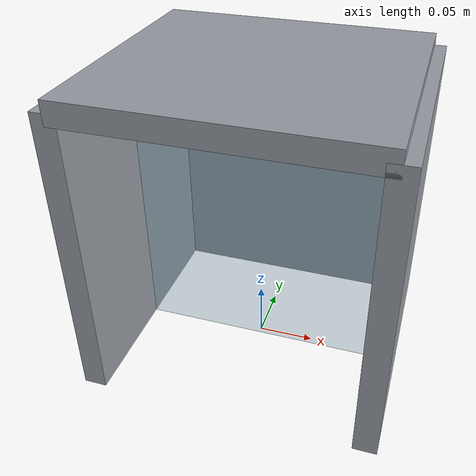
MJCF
<?xml version="1.0" encoding="utf-8"?>
<mujoco model="heat_treatment_oven">
  <compiler angle="radian" autolimits="true"/>
  <default>
    <default class="body"><geom contype="1" conaffinity="1"/></default>
  </default>
  <worldbody>
    <body name="base">
      <geom type="box" size="0.12 0.01 0.13" pos="0 0.11 0.13" rgba="0.6 0.62 0.65 1" class="body"/>
      <geom type="box" size="0.01 0.11 0.13" pos="-0.12 0 0.13" rgba="0.6 0.62 0.65 1" class="body"/>
      <geom type="box" size="0.01 0.11 0.13" pos="0.12 0 0.13" rgba="0.6 0.62 0.65 1" class="body"/>
      <geom type="box" size="0.12 0.11 0.01" pos="0 0 0.26" rgba="0.6 0.62 0.65 1" class="body"/>
      <body name="door" pos="-0.12 0.0 0.13">
        <joint name="door_joint" type="hinge" axis="0 0 1" range="0 1.8" damping="0.6" frictionloss="0.3"/>
  <geom type="box" size="0.12 0.005 0.13" pos="0.12 0 0" rgba="0.6 0.8 0.9 0.35" class="body"/>
      </body>
    </body>
  </worldbody>
</mujoco>
